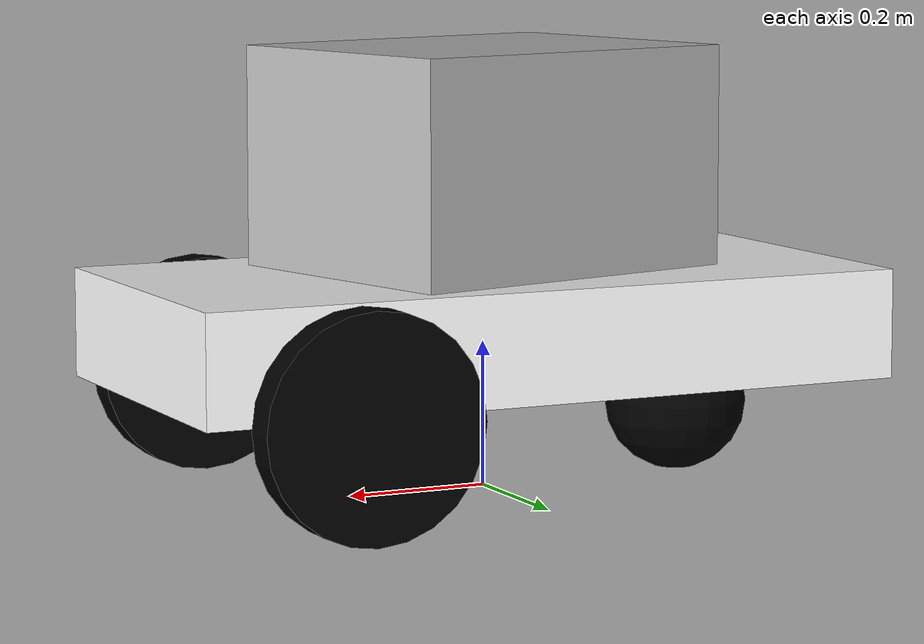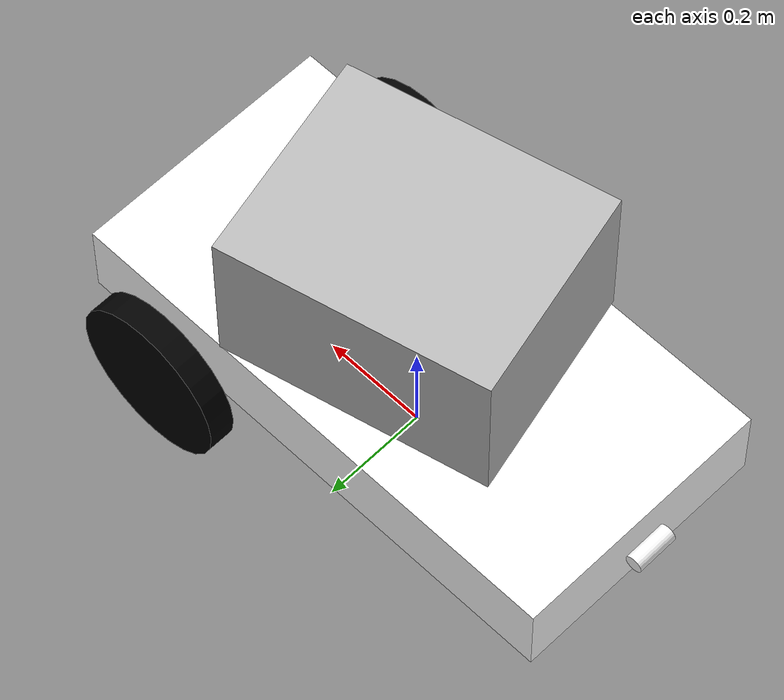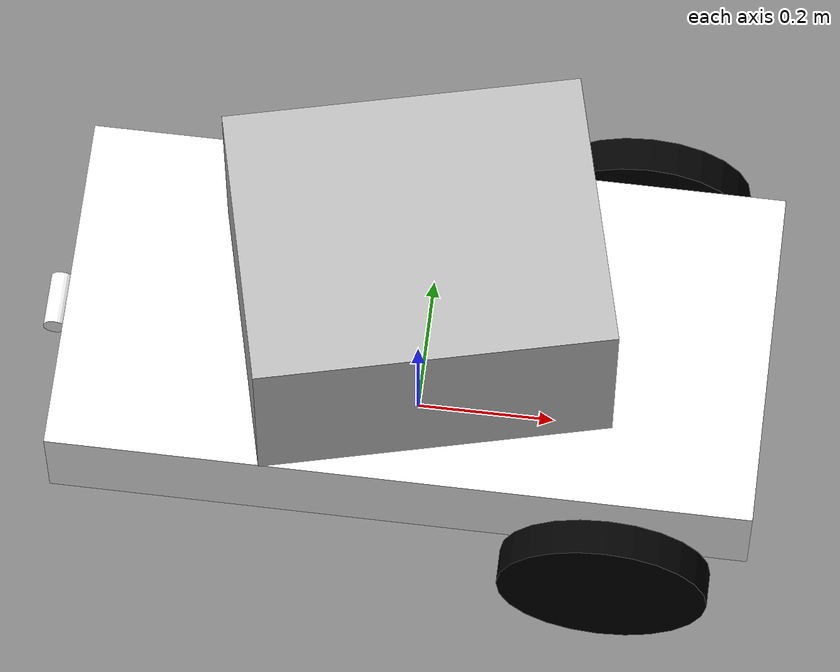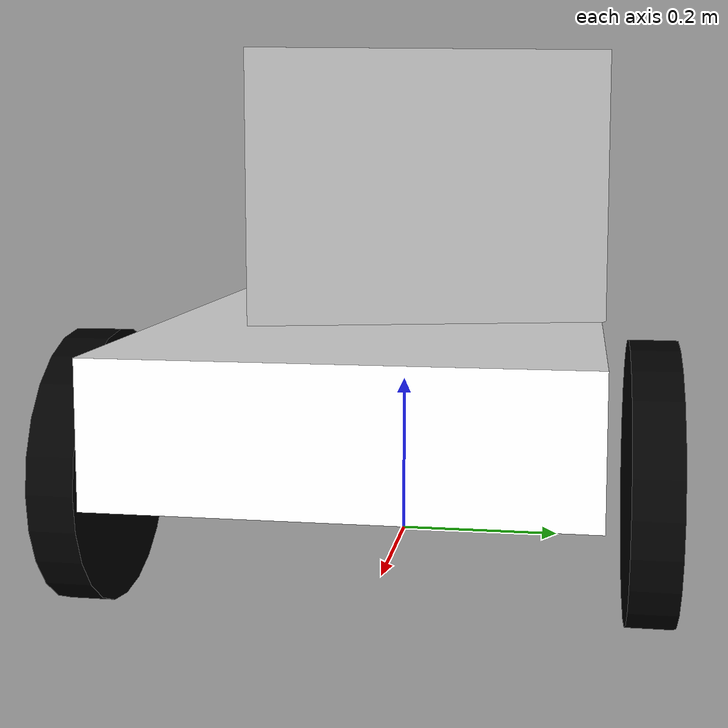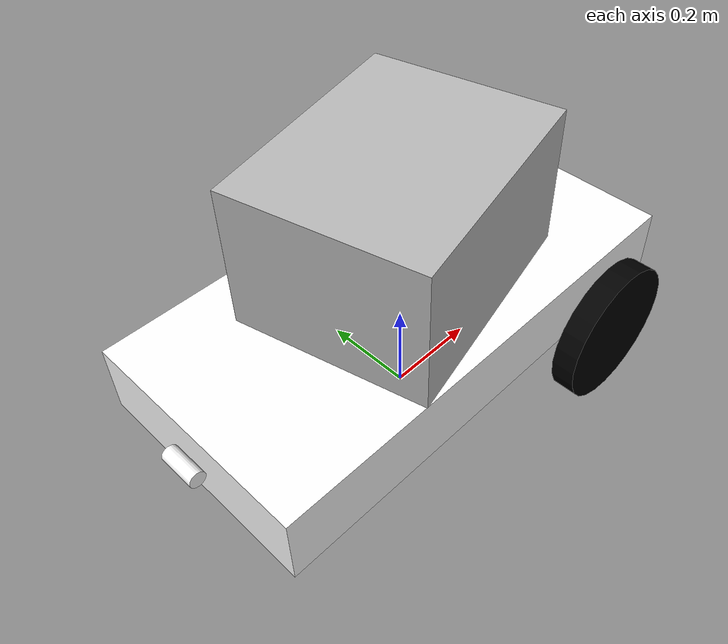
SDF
<?xml version="1.0" ?>
<sdf version="1.7">
  <model name='Dolly'>
    <pose>0 0 0.225 0 -0 0</pose>

    <link name='chassis'>
      <inertial>
        <mass>1.0</mass>
        <inertia>
          <ixx>0.0227</ixx>
          <ixy>0</ixy>
          <ixz>0</ixz>
          <iyy>0.0852</iyy>
          <iyz>0</iyz>
          <izz>0.1041</izz>
        </inertia>
      </inertial>
      <visual name='visual'>
        <geometry>
          <box>
            <size>1.0 0.5 0.15</size>
          </box>
        </geometry>
        <material>
          <diffuse>1.0 1.0 1.0</diffuse>
          <specular>1.0 1.0 1.0</specular>
          <ambient>1.0 1.0 1.0</ambient>
          <pbr>
            <metal>
              <albedo_map>model://dolly_ignition/materials/textures/sheep.jpg</albedo_map>
            </metal>
          </pbr>
        </material>
      </visual>
      <visual name="box">
        <pose>0 0 0.08 0 0 0.24</pose>
        <geometry>
          <mesh>
            <uri>model://dolly_ignition/meshes/cardboard_box.dae</uri>
            <scale>1.25931896 1.007455168 0.755591376</scale>
          </mesh>
        </geometry>
      </visual>
      <sensor name="sensor_ray" type="gpu_lidar">
        <pose>0.5 0 0 0 0 0</pose>
        <topic>/dolly/laser_scan</topic>
        <ray>
          <scan>
            <horizontal>
              <samples>200</samples>
              <resolution>1.0</resolution>
              <min_angle>-1.0</min_angle>
              <max_angle>1.0</max_angle>
            </horizontal>
          </scan>
          <range>
            <min>0.05</min>
            <max>10.0</max>
          </range>
        </ray>
        <always_on>true</always_on>
        <visualize>true</visualize>
        <update_rate>100.0</update_rate>
      </sensor>
    </link>
    <link name='caster'>
      <pose>-0.3 0 -0.125 0 0 0</pose>
      <inertial>
        <mass>0.0415553</mass>
        <inertia>
          <ixx>7.97741e-05</ixx>
          <ixy>0</ixy>
          <ixz>0</ixz>
          <iyy>7.97741e-05</iyy>
          <iyz>0</iyz>
          <izz>7.97741e-05</izz>
        </inertia>
      </inertial>
      <visual name='visual'>
        <geometry>
          <sphere>
            <radius>0.1</radius>
          </sphere>
        </geometry>
        <material>
          <diffuse>0 0 0 1</diffuse>
          <ambient>0 0 0 1</ambient>
          <specular>0 0 0 1</specular>
          <emissive>0 0 0 1</emissive>
        </material>
      </visual>
      <collision name='collision'>
        <geometry>
          <sphere>
            <radius>0.1</radius>
          </sphere>
        </geometry>
        <surface>
          <friction>
            <ode>
              <mu>1</mu>
              <mu2>1</mu2>
              <slip1>0</slip1>
              <slip2>0</slip2>
            </ode>
          </friction>
          <contact>
            <ode>
              <soft_cfm>0</soft_cfm>
              <soft_erp>0.2</soft_erp>
              <kp>1e+13</kp>
              <kd>1</kd>
              <max_vel>0.01</max_vel>
              <min_depth>0</min_depth>
            </ode>
          </contact>
        </surface>
      </collision>
    </link>

    <link name='left_wheel'>
      <pose>0.3 0.3 -0.075 -1.5707 0 0</pose>
      <inertial>
        <mass>0.5</mass>
        <inertia>
          <ixx>0.0029</ixx>
          <ixy>0</ixy>
          <ixz>0</ixz>
          <iyy>0.0029</iyy>
          <iyz>0</iyz>
          <izz>0.0056</izz>
        </inertia>
      </inertial>
      <visual name='visual'>
        <geometry>
          <cylinder>
            <radius>0.15</radius>
            <length>0.05</length>
          </cylinder>
        </geometry>
        <material>
          <diffuse>0 0 0 1</diffuse>
          <ambient>0 0 0 1</ambient>
          <specular>0 0 0 1</specular>
          <emissive>0 0 0 1</emissive>
        </material>
      </visual>
      <collision name='collision'>
        <geometry>
          <sphere>
            <radius>0.15</radius>
          </sphere>
        </geometry>
        <surface>
          <friction>
            <ode>
              <mu>1</mu>
              <mu2>1</mu2>
              <slip1>0</slip1>
              <slip2>0</slip2>
            </ode>
          </friction>
          <contact>
            <ode>
              <soft_cfm>0</soft_cfm>
              <soft_erp>0.2</soft_erp>
              <kp>1e+13</kp>
              <kd>1</kd>
              <max_vel>0.01</max_vel>
              <min_depth>0.01</min_depth>
            </ode>
          </contact>
        </surface>
      </collision>
    </link>

    <link name='right_wheel'>
      <pose>0.3 -0.3 -0.075 -1.5707 0 0</pose>
      <inertial>
        <mass>0.5</mass>
        <inertia>
          <ixx>0.0029</ixx>
          <ixy>0</ixy>
          <ixz>0</ixz>
          <iyy>0.0029</iyy>
          <iyz>0</iyz>
          <izz>0.0056</izz>
        </inertia>
      </inertial>
      <visual name='visual'>
        <geometry>
          <cylinder>
            <radius>0.15</radius>
            <length>0.05</length>
          </cylinder>
        </geometry>
        <material>
          <diffuse>0 0 0 1</diffuse>
          <ambient>0 0 0 1</ambient>
          <specular>0 0 0 1</specular>
          <emissive>0 0 0 1</emissive>
        </material>
      </visual>
      <collision name='collision'>
        <geometry>
          <sphere>
            <radius>0.15</radius>
          </sphere>
        </geometry>
        <surface>
          <friction>
            <ode>
              <mu>1</mu>
              <mu2>1</mu2>
              <slip1>0</slip1>
              <slip2>0</slip2>
            </ode>
          </friction>
          <contact>
            <ode>
              <soft_cfm>0</soft_cfm>
              <soft_erp>0.2</soft_erp>
              <kp>1e+13</kp>
              <kd>1</kd>
              <max_vel>0.01</max_vel>
              <min_depth>0.01</min_depth>
            </ode>
          </contact>
        </surface>
      </collision>
    </link>

    <link name='tail'>
      <pose>-0.52 0 0 -1.6 0 0</pose>
      <inertial>
        <mass>0.0254232</mass>
        <inertia>
          <ixx>1.528e-05</ixx>
          <ixy>0</ixy>
          <ixz>0</ixz>
          <iyy>1.528e-05</iyy>
          <iyz>0</iyz>
          <izz>3.45e-06</izz>
        </inertia>
        <pose>0 0 -0.04 0 -0 0</pose>
      </inertial>
      <visual name='visual'>
        <geometry>
          <cylinder>
            <radius>0.016468</radius>
            <length>0.08</length>
          </cylinder>
        </geometry>
        <material>
          <diffuse>1.0 1.0 1.0</diffuse>
          <specular>1.0 1.0 1.0</specular>
          <ambient>1.0 1.0 1.0</ambient>
          <pbr>
            <metal>
              <albedo_map>model://dolly_ignition/materials/textures/sheep.jpg</albedo_map>
            </metal>
          </pbr>
        </material>
      </visual>
    </link>

    <joint name='left_wheel_joint' type='revolute'>
      <parent>chassis</parent>
      <child>left_wheel</child>
      <axis>
        <xyz>0 0 1</xyz>
        <limit>
          <lower>-1.79769e+308</lower>
          <upper>1.79769e+308</upper>
        </limit>
      </axis>
    </joint>

    <joint name='right_wheel_joint' type='revolute'>
      <parent>chassis</parent>
      <child>right_wheel</child>
      <axis>
        <xyz>0 0 1</xyz>
        <limit>
          <lower>-1.79769e+308</lower>
          <upper>1.79769e+308</upper>
        </limit>
      </axis>
    </joint>

    <joint name='caster_wheel' type='ball'>
      <parent>chassis</parent>
      <child>caster</child>
    </joint>

    <joint name='tail_joint' type='revolute'>
      <parent>chassis</parent>
      <child>tail</child>
      <pose>0 0 0.04 0 -0 0</pose>
      <axis>
        <xyz>1 0 0</xyz>
        <use_parent_model_frame>0</use_parent_model_frame>
        <limit>
          <lower>-1.79769e+308</lower>
          <upper>1.79769e+308</upper>
          <effort>-1</effort>
          <velocity>-1</velocity>
        </limit>
        <dynamics>
          <spring_reference>0</spring_reference>
          <spring_stiffness>0</spring_stiffness>
          <damping>0</damping>
          <friction>0</friction>
        </dynamics>
      </axis>
      <physics>
        <ode>
          <limit>
            <cfm>0</cfm>
            <erp>0.2</erp>
          </limit>
          <suspension>
            <cfm>0</cfm>
            <erp>0.2</erp>
          </suspension>
        </ode>
      </physics>
    </joint>

    <plugin
      filename="libignition-gazebo-diff-drive-system.so"
      name="ignition::gazebo::systems::DiffDrive">
      <left_joint>left_wheel_joint</left_joint>
      <right_joint>right_wheel_joint</right_joint>
      <wheel_separation>1.25</wheel_separation>
      <wheel_radius>0.3</wheel_radius>
      <topic>/dolly/cmd_vel</topic>
      <odom_topic>/dolly/odometry</odom_topic>
    </plugin>

  </model>
</sdf>
